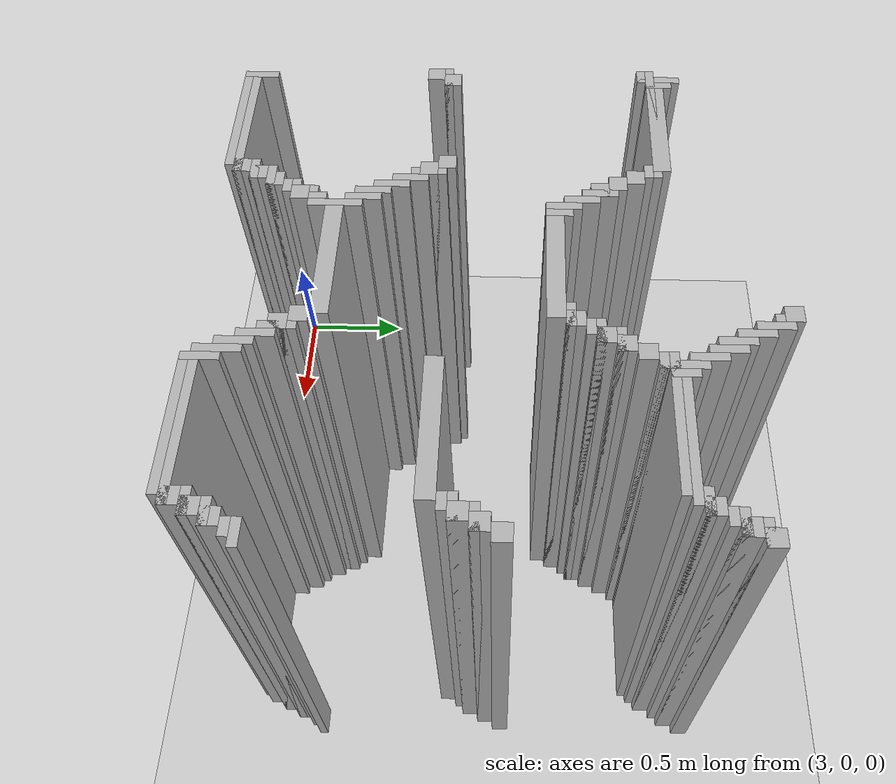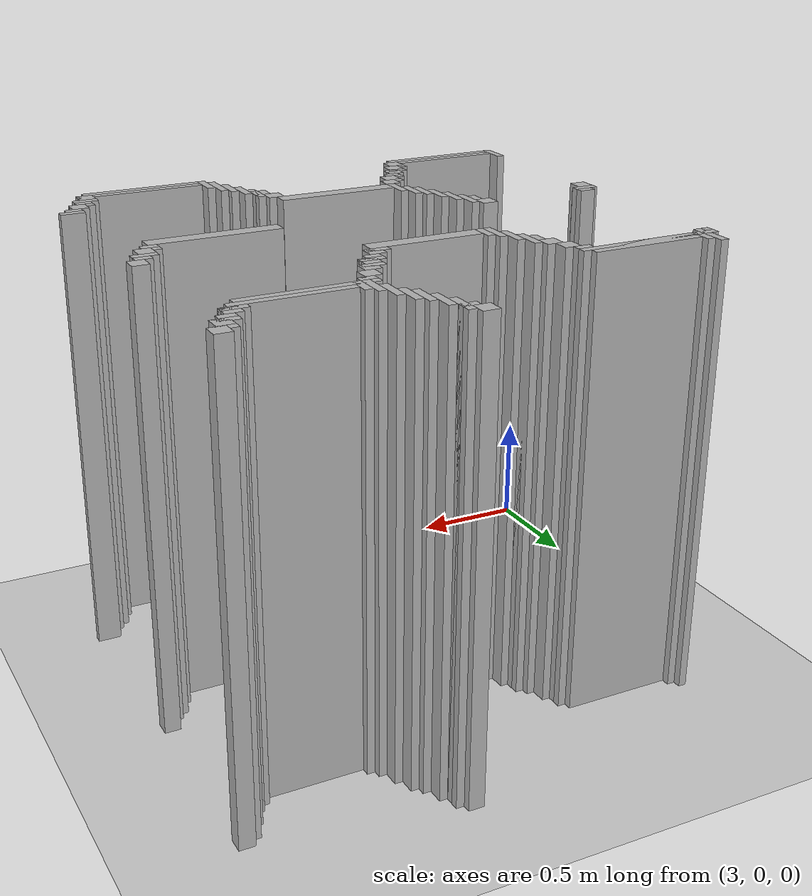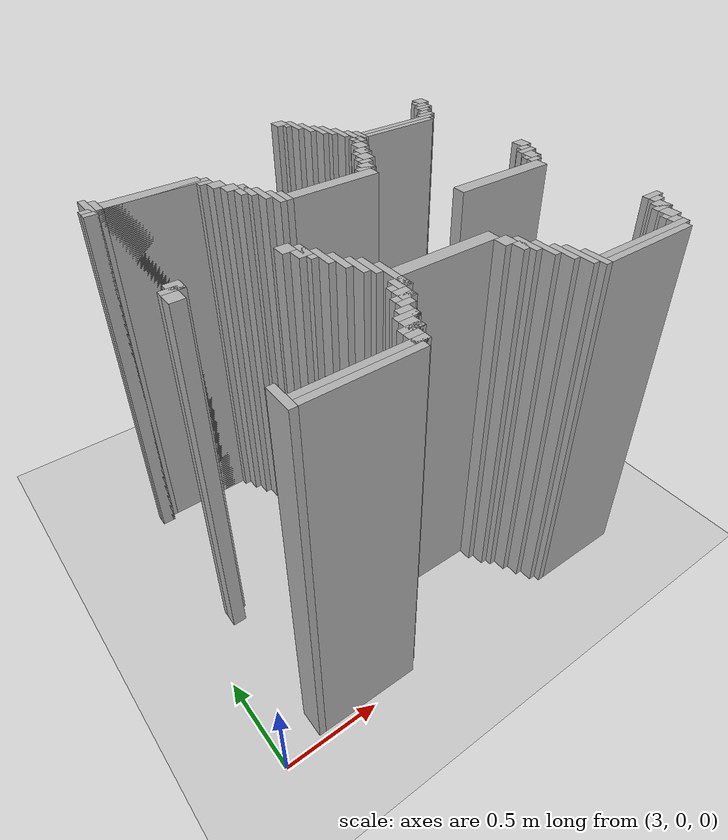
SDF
<sdf version="1.6">
 <world name="slam_world">
  <model name="ground_plane">
   <static>true</static>
   <link name="link">
    <collision name="collision">
     <geometry><plane><normal>0 0 1</normal><size>100 100</size></plane></geometry>
    </collision>
    <visual name="visual">
     <geometry><plane><normal>0 0 1</normal><size>100 100</size></plane></geometry>
     <material>
      <ambient>0.8 0.8 0.8 1</ambient>
      <diffuse>0.8 0.8 0.8 1</diffuse>
      <specular>0.8 0.8 0.8 1</specular>
     </material>
    </visual>
   </link>
  </model>
  <model name="wall_5048">
   <static>true</static>
   <pose>4.454756380510441 2.1577726218097446 1.0 0 0 0</pose>
   <link name="link">
    <collision name="collision">
     <geometry><box><size>0.06960556844547564 0.06960556844547564 2.0</size></box></geometry>
    </collision>
    <visual name="visual">
     <geometry><box><size>0.06960556844547564 0.06960556844547564 2.0</size></box></geometry>
     <material><ambient>0.5 0.5 0.5 1</ambient><diffuse>0.7 0.7 0.7 1</diffuse></material>
    </visual>
   </link>
  </model>
  <model name="wall_5060">
   <static>true</static>
   <pose>4.506960556844548 2.088167053364269 1.0 0 0 0</pose>
   <link name="link">
    <collision name="collision">
     <geometry><box><size>0.03480278422273782 0.13921113689095127 2.0</size></box></geometry>
    </collision>
    <visual name="visual">
     <geometry><box><size>0.03480278422273782 0.13921113689095127 2.0</size></box></geometry>
     <material><ambient>0.5 0.5 0.5 1</ambient><diffuse>0.7 0.7 0.7 1</diffuse></material>
    </visual>
   </link>
  </model>
  <model name="wall_5077">
   <static>true</static>
   <pose>4.489559164733178 2.105568445475638 1.0 0 0 0</pose>
   <link name="link">
    <collision name="collision">
     <geometry><box><size>0.06960556844547564 0.03480278422273782 2.0</size></box></geometry>
    </collision>
    <visual name="visual">
     <geometry><box><size>0.06960556844547564 0.03480278422273782 2.0</size></box></geometry>
     <material><ambient>0.5 0.5 0.5 1</ambient><diffuse>0.7 0.7 0.7 1</diffuse></material>
    </visual>
   </link>
  </model>
  <model name="wall_5091">
   <static>true</static>
   <pose>4.541763341067285 2.0185614849187936 1.0 0 0 0</pose>
   <link name="link">
    <collision name="collision">
     <geometry><box><size>0.03480278422273782 0.13921113689095127 2.0</size></box></geometry>
    </collision>
    <visual name="visual">
     <geometry><box><size>0.03480278422273782 0.13921113689095127 2.0</size></box></geometry>
     <material><ambient>0.5 0.5 0.5 1</ambient><diffuse>0.7 0.7 0.7 1</diffuse></material>
    </visual>
   </link>
  </model>
  <model name="wall_5105">
   <static>true</static>
   <pose>4.576566125290023 1.948955916473318 1.0 0 0 0</pose>
   <link name="link">
    <collision name="collision">
     <geometry><box><size>0.03480278422273782 0.13921113689095127 2.0</size></box></geometry>
    </collision>
    <visual name="visual">
     <geometry><box><size>0.03480278422273782 0.13921113689095127 2.0</size></box></geometry>
     <material><ambient>0.5 0.5 0.5 1</ambient><diffuse>0.7 0.7 0.7 1</diffuse></material>
    </visual>
   </link>
  </model>
  <model name="wall_5106">
   <static>true</static>
   <pose>5.324825986078886 1.9837587006960555 1.0 0 0 0</pose>
   <link name="link">
    <collision name="collision">
     <geometry><box><size>0.06960556844547564 0.06960556844547564 2.0</size></box></geometry>
    </collision>
    <visual name="visual">
     <geometry><box><size>0.06960556844547564 0.06960556844547564 2.0</size></box></geometry>
     <material><ambient>0.5 0.5 0.5 1</ambient><diffuse>0.7 0.7 0.7 1</diffuse></material>
    </visual>
   </link>
  </model>
  <model name="wall_5119">
   <static>true</static>
   <pose>4.611368909512761 1.91415313225058 1.0 0 0 0</pose>
   <link name="link">
    <collision name="collision">
     <geometry><box><size>0.03480278422273782 0.13921113689095127 2.0</size></box></geometry>
    </collision>
    <visual name="visual">
     <geometry><box><size>0.03480278422273782 0.13921113689095127 2.0</size></box></geometry>
     <material><ambient>0.5 0.5 0.5 1</ambient><diffuse>0.7 0.7 0.7 1</diffuse></material>
    </visual>
   </link>
  </model>
  <model name="wall_5120">
   <static>true</static>
   <pose>5.307424593967517 1.9663573085846866 1.0 0 0 0</pose>
   <link name="link">
    <collision name="collision">
     <geometry><box><size>0.10440835266821345 0.03480278422273782 2.0</size></box></geometry>
    </collision>
    <visual name="visual">
     <geometry><box><size>0.10440835266821345 0.03480278422273782 2.0</size></box></geometry>
     <material><ambient>0.5 0.5 0.5 1</ambient><diffuse>0.7 0.7 0.7 1</diffuse></material>
    </visual>
   </link>
  </model>
  <model name="wall_5131">
   <static>true</static>
   <pose>5.290023201856148 1.91415313225058 1.0 0 0 0</pose>
   <link name="link">
    <collision name="collision">
     <geometry><box><size>0.06960556844547564 0.06960556844547564 2.0</size></box></geometry>
    </collision>
    <visual name="visual">
     <geometry><box><size>0.06960556844547564 0.06960556844547564 2.0</size></box></geometry>
     <material><ambient>0.5 0.5 0.5 1</ambient><diffuse>0.7 0.7 0.7 1</diffuse></material>
    </visual>
   </link>
  </model>
  <model name="wall_5141">
   <static>true</static>
   <pose>4.646171693735498 1.8445475638051043 1.0 0 0 0</pose>
   <link name="link">
    <collision name="collision">
     <geometry><box><size>0.03480278422273782 0.13921113689095127 2.0</size></box></geometry>
    </collision>
    <visual name="visual">
     <geometry><box><size>0.03480278422273782 0.13921113689095127 2.0</size></box></geometry>
     <material><ambient>0.5 0.5 0.5 1</ambient><diffuse>0.7 0.7 0.7 1</diffuse></material>
    </visual>
   </link>
  </model>
  <model name="wall_5142">
   <static>true</static>
   <pose>5.27262180974478 1.896751740139211 1.0 0 0 0</pose>
   <link name="link">
    <collision name="collision">
     <geometry><box><size>0.10440835266821345 0.03480278422273782 2.0</size></box></geometry>
    </collision>
    <visual name="visual">
     <geometry><box><size>0.10440835266821345 0.03480278422273782 2.0</size></box></geometry>
     <material><ambient>0.5 0.5 0.5 1</ambient><diffuse>0.7 0.7 0.7 1</diffuse></material>
    </visual>
   </link>
  </model>
  <model name="wall_5153">
   <static>true</static>
   <pose>5.25522041763341 1.8619489559164732 1.0 0 0 0</pose>
   <link name="link">
    <collision name="collision">
     <geometry><box><size>0.06960556844547564 0.03480278422273782 2.0</size></box></geometry>
    </collision>
    <visual name="visual">
     <geometry><box><size>0.06960556844547564 0.03480278422273782 2.0</size></box></geometry>
     <material><ambient>0.5 0.5 0.5 1</ambient><diffuse>0.7 0.7 0.7 1</diffuse></material>
    </visual>
   </link>
  </model>
  <model name="wall_5159">
   <static>true</static>
   <pose>3.219257540603248 1.75754060324826 1.0 0 0 0</pose>
   <link name="link">
    <collision name="collision">
     <geometry><box><size>0.03480278422273782 0.17401392111368907 2.0</size></box></geometry>
    </collision>
    <visual name="visual">
     <geometry><box><size>0.03480278422273782 0.17401392111368907 2.0</size></box></geometry>
     <material><ambient>0.5 0.5 0.5 1</ambient><diffuse>0.7 0.7 0.7 1</diffuse></material>
    </visual>
   </link>
  </model>
  <model name="wall_5160">
   <static>true</static>
   <pose>4.6809744779582365 1.75754060324826 1.0 0 0 0</pose>
   <link name="link">
    <collision name="collision">
     <geometry><box><size>0.03480278422273782 0.17401392111368907 2.0</size></box></geometry>
    </collision>
    <visual name="visual">
     <geometry><box><size>0.03480278422273782 0.17401392111368907 2.0</size></box></geometry>
     <material><ambient>0.5 0.5 0.5 1</ambient><diffuse>0.7 0.7 0.7 1</diffuse></material>
    </visual>
   </link>
  </model>
  <model name="wall_5161">
   <static>true</static>
   <pose>5.220417633410673 1.8097447795823665 1.0 0 0 0</pose>
   <link name="link">
    <collision name="collision">
     <geometry><box><size>0.06960556844547564 0.06960556844547564 2.0</size></box></geometry>
    </collision>
    <visual name="visual">
     <geometry><box><size>0.06960556844547564 0.06960556844547564 2.0</size></box></geometry>
     <material><ambient>0.5 0.5 0.5 1</ambient><diffuse>0.7 0.7 0.7 1</diffuse></material>
    </visual>
   </link>
  </model>
  <model name="wall_5173">
   <static>true</static>
   <pose>3.254060324825986 1.75754060324826 1.0 0 0 0</pose>
   <link name="link">
    <collision name="collision">
     <geometry><box><size>0.03480278422273782 0.10440835266821345 2.0</size></box></geometry>
    </collision>
    <visual name="visual">
     <geometry><box><size>0.03480278422273782 0.10440835266821345 2.0</size></box></geometry>
     <material><ambient>0.5 0.5 0.5 1</ambient><diffuse>0.7 0.7 0.7 1</diffuse></material>
    </visual>
   </link>
  </model>
  <model name="wall_5174">
   <static>true</static>
   <pose>4.715777262180974 1.75754060324826 1.0 0 0 0</pose>
   <link name="link">
    <collision name="collision">
     <geometry><box><size>0.03480278422273782 0.10440835266821345 2.0</size></box></geometry>
    </collision>
    <visual name="visual">
     <geometry><box><size>0.03480278422273782 0.10440835266821345 2.0</size></box></geometry>
     <material><ambient>0.5 0.5 0.5 1</ambient><diffuse>0.7 0.7 0.7 1</diffuse></material>
    </visual>
   </link>
  </model>
  <model name="wall_5175">
   <static>true</static>
   <pose>5.203016241299304 1.7923433874709975 1.0 0 0 0</pose>
   <link name="link">
    <collision name="collision">
     <geometry><box><size>0.10440835266821345 0.03480278422273782 2.0</size></box></geometry>
    </collision>
    <visual name="visual">
     <geometry><box><size>0.10440835266821345 0.03480278422273782 2.0</size></box></geometry>
     <material><ambient>0.5 0.5 0.5 1</ambient><diffuse>0.7 0.7 0.7 1</diffuse></material>
    </visual>
   </link>
  </model>
  <model name="wall_5186">
   <static>true</static>
   <pose>3.51508120649652 1.740139211136891 1.0 0 0 0</pose>
   <link name="link">
    <collision name="collision">
     <geometry><box><size>0.4872389791183295 0.06960556844547564 2.0</size></box></geometry>
    </collision>
    <visual name="visual">
     <geometry><box><size>0.4872389791183295 0.06960556844547564 2.0</size></box></geometry>
     <material><ambient>0.5 0.5 0.5 1</ambient><diffuse>0.7 0.7 0.7 1</diffuse></material>
    </visual>
   </link>
  </model>
  <model name="wall_5187">
   <static>true</static>
   <pose>4.976798143851508 1.75754060324826 1.0 0 0 0</pose>
   <link name="link">
    <collision name="collision">
     <geometry><box><size>0.4872389791183295 0.03480278422273782 2.0</size></box></geometry>
    </collision>
    <visual name="visual">
     <geometry><box><size>0.4872389791183295 0.03480278422273782 2.0</size></box></geometry>
     <material><ambient>0.5 0.5 0.5 1</ambient><diffuse>0.7 0.7 0.7 1</diffuse></material>
    </visual>
   </link>
  </model>
  <model name="wall_5196">
   <static>true</static>
   <pose>3.480278422273782 1.722737819025522 1.0 0 0 0</pose>
   <link name="link">
    <collision name="collision">
     <geometry><box><size>0.6264501160092807 0.03480278422273782 2.0</size></box></geometry>
    </collision>
    <visual name="visual">
     <geometry><box><size>0.6264501160092807 0.03480278422273782 2.0</size></box></geometry>
     <material><ambient>0.5 0.5 0.5 1</ambient><diffuse>0.7 0.7 0.7 1</diffuse></material>
    </visual>
   </link>
  </model>
  <model name="wall_5197">
   <static>true</static>
   <pose>4.907192575406032 1.722737819025522 1.0 0 0 0</pose>
   <link name="link">
    <collision name="collision">
     <geometry><box><size>0.5568445475638051 0.03480278422273782 2.0</size></box></geometry>
    </collision>
    <visual name="visual">
     <geometry><box><size>0.5568445475638051 0.03480278422273782 2.0</size></box></geometry>
     <material><ambient>0.5 0.5 0.5 1</ambient><diffuse>0.7 0.7 0.7 1</diffuse></material>
    </visual>
   </link>
  </model>
  <model name="wall_5210">
   <static>true</static>
   <pose>3.201856148491879 1.6879350348027842 1.0 0 0 0</pose>
   <link name="link">
    <collision name="collision">
     <geometry><box><size>0.06960556844547564 0.03480278422273782 2.0</size></box></geometry>
    </collision>
    <visual name="visual">
     <geometry><box><size>0.06960556844547564 0.03480278422273782 2.0</size></box></geometry>
     <material><ambient>0.5 0.5 0.5 1</ambient><diffuse>0.7 0.7 0.7 1</diffuse></material>
    </visual>
   </link>
  </model>
  <model name="wall_5211">
   <static>true</static>
   <pose>3.7587006960556844 1.6879350348027842 1.0 0 0 0</pose>
   <link name="link">
    <collision name="collision">
     <geometry><box><size>0.06960556844547564 0.03480278422273782 2.0</size></box></geometry>
    </collision>
    <visual name="visual">
     <geometry><box><size>0.06960556844547564 0.03480278422273782 2.0</size></box></geometry>
     <material><ambient>0.5 0.5 0.5 1</ambient><diffuse>0.7 0.7 0.7 1</diffuse></material>
    </visual>
   </link>
  </model>
  <model name="wall_5212">
   <static>true</static>
   <pose>4.663573085846868 1.6879350348027842 1.0 0 0 0</pose>
   <link name="link">
    <collision name="collision">
     <geometry><box><size>0.06960556844547564 0.03480278422273782 2.0</size></box></geometry>
    </collision>
    <visual name="visual">
     <geometry><box><size>0.06960556844547564 0.03480278422273782 2.0</size></box></geometry>
     <material><ambient>0.5 0.5 0.5 1</ambient><diffuse>0.7 0.7 0.7 1</diffuse></material>
    </visual>
   </link>
  </model>
  <model name="wall_5226">
   <static>true</static>
   <pose>3.793503480278422 1.6357308584686774 1.0 0 0 0</pose>
   <link name="link">
    <collision name="collision">
     <geometry><box><size>0.06960556844547564 0.06960556844547564 2.0</size></box></geometry>
    </collision>
    <visual name="visual">
     <geometry><box><size>0.06960556844547564 0.06960556844547564 2.0</size></box></geometry>
     <material><ambient>0.5 0.5 0.5 1</ambient><diffuse>0.7 0.7 0.7 1</diffuse></material>
    </visual>
   </link>
  </model>
  <model name="wall_5227">
   <static>true</static>
   <pose>4.6287703016241295 1.6357308584686774 1.0 0 0 0</pose>
   <link name="link">
    <collision name="collision">
     <geometry><box><size>0.06960556844547564 0.06960556844547564 2.0</size></box></geometry>
    </collision>
    <visual name="visual">
     <geometry><box><size>0.06960556844547564 0.06960556844547564 2.0</size></box></geometry>
     <material><ambient>0.5 0.5 0.5 1</ambient><diffuse>0.7 0.7 0.7 1</diffuse></material>
    </visual>
   </link>
  </model>
  <model name="wall_5241">
   <static>true</static>
   <pose>3.82830626450116 1.5661252900232019 1.0 0 0 0</pose>
   <link name="link">
    <collision name="collision">
     <geometry><box><size>0.06960556844547564 0.06960556844547564 2.0</size></box></geometry>
    </collision>
    <visual name="visual">
     <geometry><box><size>0.06960556844547564 0.06960556844547564 2.0</size></box></geometry>
     <material><ambient>0.5 0.5 0.5 1</ambient><diffuse>0.7 0.7 0.7 1</diffuse></material>
    </visual>
   </link>
  </model>
  <model name="wall_5242">
   <static>true</static>
   <pose>4.593967517401392 1.5661252900232019 1.0 0 0 0</pose>
   <link name="link">
    <collision name="collision">
     <geometry><box><size>0.06960556844547564 0.06960556844547564 2.0</size></box></geometry>
    </collision>
    <visual name="visual">
     <geometry><box><size>0.06960556844547564 0.06960556844547564 2.0</size></box></geometry>
     <material><ambient>0.5 0.5 0.5 1</ambient><diffuse>0.7 0.7 0.7 1</diffuse></material>
    </visual>
   </link>
  </model>
  <model name="wall_5256">
   <static>true</static>
   <pose>3.8805104408352666 1.4965197215777262 1.0 0 0 0</pose>
   <link name="link">
    <collision name="collision">
     <geometry><box><size>0.03480278422273782 0.13921113689095127 2.0</size></box></geometry>
    </collision>
    <visual name="visual">
     <geometry><box><size>0.03480278422273782 0.13921113689095127 2.0</size></box></geometry>
     <material><ambient>0.5 0.5 0.5 1</ambient><diffuse>0.7 0.7 0.7 1</diffuse></material>
    </visual>
   </link>
  </model>
  <model name="wall_5257">
   <static>true</static>
   <pose>4.576566125290023 1.548723897911833 1.0 0 0 0</pose>
   <link name="link">
    <collision name="collision">
     <geometry><box><size>0.10440835266821345 0.03480278422273782 2.0</size></box></geometry>
    </collision>
    <visual name="visual">
     <geometry><box><size>0.10440835266821345 0.03480278422273782 2.0</size></box></geometry>
     <material><ambient>0.5 0.5 0.5 1</ambient><diffuse>0.7 0.7 0.7 1</diffuse></material>
    </visual>
   </link>
  </model>
  <model name="wall_5271">
   <static>true</static>
   <pose>3.863109048723898 1.4965197215777262 1.0 0 0 0</pose>
   <link name="link">
    <collision name="collision">
     <geometry><box><size>0.06960556844547564 0.06960556844547564 2.0</size></box></geometry>
    </collision>
    <visual name="visual">
     <geometry><box><size>0.06960556844547564 0.06960556844547564 2.0</size></box></geometry>
     <material><ambient>0.5 0.5 0.5 1</ambient><diffuse>0.7 0.7 0.7 1</diffuse></material>
    </visual>
   </link>
  </model>
  <model name="wall_5272">
   <static>true</static>
   <pose>4.559164733178654 1.4965197215777262 1.0 0 0 0</pose>
   <link name="link">
    <collision name="collision">
     <geometry><box><size>0.06960556844547564 0.06960556844547564 2.0</size></box></geometry>
    </collision>
    <visual name="visual">
     <geometry><box><size>0.06960556844547564 0.06960556844547564 2.0</size></box></geometry>
     <material><ambient>0.5 0.5 0.5 1</ambient><diffuse>0.7 0.7 0.7 1</diffuse></material>
    </visual>
   </link>
  </model>
  <model name="wall_5282">
   <static>true</static>
   <pose>3.9153132250580045 1.4269141531322505 1.0 0 0 0</pose>
   <link name="link">
    <collision name="collision">
     <geometry><box><size>0.03480278422273782 0.13921113689095127 2.0</size></box></geometry>
    </collision>
    <visual name="visual">
     <geometry><box><size>0.03480278422273782 0.13921113689095127 2.0</size></box></geometry>
     <material><ambient>0.5 0.5 0.5 1</ambient><diffuse>0.7 0.7 0.7 1</diffuse></material>
    </visual>
   </link>
  </model>
  <model name="wall_5283">
   <static>true</static>
   <pose>4.541763341067285 1.4791183294663572 1.0 0 0 0</pose>
   <link name="link">
    <collision name="collision">
     <geometry><box><size>0.10440835266821345 0.03480278422273782 2.0</size></box></geometry>
    </collision>
    <visual name="visual">
     <geometry><box><size>0.10440835266821345 0.03480278422273782 2.0</size></box></geometry>
     <material><ambient>0.5 0.5 0.5 1</ambient><diffuse>0.7 0.7 0.7 1</diffuse></material>
    </visual>
   </link>
  </model>
  <model name="wall_5295">
   <static>true</static>
   <pose>4.524361948955916 1.4443155452436194 1.0 0 0 0</pose>
   <link name="link">
    <collision name="collision">
     <geometry><box><size>0.06960556844547564 0.03480278422273782 2.0</size></box></geometry>
    </collision>
    <visual name="visual">
     <geometry><box><size>0.06960556844547564 0.03480278422273782 2.0</size></box></geometry>
     <material><ambient>0.5 0.5 0.5 1</ambient><diffuse>0.7 0.7 0.7 1</diffuse></material>
    </visual>
   </link>
  </model>
  <model name="wall_5304">
   <static>true</static>
   <pose>3.9501160092807424 1.357308584686775 1.0 0 0 0</pose>
   <link name="link">
    <collision name="collision">
     <geometry><box><size>0.03480278422273782 0.13921113689095127 2.0</size></box></geometry>
    </collision>
    <visual name="visual">
     <geometry><box><size>0.03480278422273782 0.13921113689095127 2.0</size></box></geometry>
     <material><ambient>0.5 0.5 0.5 1</ambient><diffuse>0.7 0.7 0.7 1</diffuse></material>
    </visual>
   </link>
  </model>
  <model name="wall_5305">
   <static>true</static>
   <pose>4.489559164733178 1.3921113689095126 1.0 0 0 0</pose>
   <link name="link">
    <collision name="collision">
     <geometry><box><size>0.06960556844547564 0.06960556844547564 2.0</size></box></geometry>
    </collision>
    <visual name="visual">
     <geometry><box><size>0.06960556844547564 0.06960556844547564 2.0</size></box></geometry>
     <material><ambient>0.5 0.5 0.5 1</ambient><diffuse>0.7 0.7 0.7 1</diffuse></material>
    </visual>
   </link>
  </model>
  <model name="wall_5314">
   <static>true</static>
   <pose>3.98491879350348 1.339907192575406 1.0 0 0 0</pose>
   <link name="link">
    <collision name="collision">
     <geometry><box><size>0.03480278422273782 0.10440835266821345 2.0</size></box></geometry>
    </collision>
    <visual name="visual">
     <geometry><box><size>0.03480278422273782 0.10440835266821345 2.0</size></box></geometry>
     <material><ambient>0.5 0.5 0.5 1</ambient><diffuse>0.7 0.7 0.7 1</diffuse></material>
    </visual>
   </link>
  </model>
  <model name="wall_5315">
   <static>true</static>
   <pose>4.472157772621809 1.3747099767981439 1.0 0 0 0</pose>
   <link name="link">
    <collision name="collision">
     <geometry><box><size>0.10440835266821345 0.03480278422273782 2.0</size></box></geometry>
    </collision>
    <visual name="visual">
     <geometry><box><size>0.10440835266821345 0.03480278422273782 2.0</size></box></geometry>
     <material><ambient>0.5 0.5 0.5 1</ambient><diffuse>0.7 0.7 0.7 1</diffuse></material>
    </visual>
   </link>
  </model>
  <model name="wall_5329">
   <static>true</static>
   <pose>4.2459396751740135 1.322505800464037 1.0 0 0 0</pose>
   <link name="link">
    <collision name="collision">
     <geometry><box><size>0.4872389791183295 0.06960556844547564 2.0</size></box></geometry>
    </collision>
    <visual name="visual">
     <geometry><box><size>0.4872389791183295 0.06960556844547564 2.0</size></box></geometry>
     <material><ambient>0.5 0.5 0.5 1</ambient><diffuse>0.7 0.7 0.7 1</diffuse></material>
    </visual>
   </link>
  </model>
  <model name="wall_5376">
   <static>true</static>
   <pose>5.324825986078886 1.148491879350348 1.0 0 0 0</pose>
   <link name="link">
    <collision name="collision">
     <geometry><box><size>0.06960556844547564 0.06960556844547564 2.0</size></box></geometry>
    </collision>
    <visual name="visual">
     <geometry><box><size>0.06960556844547564 0.06960556844547564 2.0</size></box></geometry>
     <material><ambient>0.5 0.5 0.5 1</ambient><diffuse>0.7 0.7 0.7 1</diffuse></material>
    </visual>
   </link>
  </model>
  <model name="wall_5387">
   <static>true</static>
   <pose>5.290023201856148 1.0788863109048723 1.0 0 0 0</pose>
   <link name="link">
    <collision name="collision">
     <geometry><box><size>0.06960556844547564 0.06960556844547564 2.0</size></box></geometry>
    </collision>
    <visual name="visual">
     <geometry><box><size>0.06960556844547564 0.06960556844547564 2.0</size></box></geometry>
     <material><ambient>0.5 0.5 0.5 1</ambient><diffuse>0.7 0.7 0.7 1</diffuse></material>
    </visual>
   </link>
  </model>
  <model name="wall_5398">
   <static>true</static>
   <pose>5.27262180974478 1.0614849187935034 1.0 0 0 0</pose>
   <link name="link">
    <collision name="collision">
     <geometry><box><size>0.10440835266821345 0.03480278422273782 2.0</size></box></geometry>
    </collision>
    <visual name="visual">
     <geometry><box><size>0.10440835266821345 0.03480278422273782 2.0</size></box></geometry>
     <material><ambient>0.5 0.5 0.5 1</ambient><diffuse>0.7 0.7 0.7 1</diffuse></material>
    </visual>
   </link>
  </model>
  <model name="wall_5408">
   <static>true</static>
   <pose>5.25522041763341 1.0092807424593968 1.0 0 0 0</pose>
   <link name="link">
    <collision name="collision">
     <geometry><box><size>0.06960556844547564 0.06960556844547564 2.0</size></box></geometry>
    </collision>
    <visual name="visual">
     <geometry><box><size>0.06960556844547564 0.06960556844547564 2.0</size></box></geometry>
     <material><ambient>0.5 0.5 0.5 1</ambient><diffuse>0.7 0.7 0.7 1</diffuse></material>
    </visual>
   </link>
  </model>
  <model name="wall_5414">
   <static>true</static>
   <pose>5.237819025522041 0.9918793503480278 1.0 0 0 0</pose>
   <link name="link">
    <collision name="collision">
     <geometry><box><size>0.10440835266821345 0.03480278422273782 2.0</size></box></geometry>
    </collision>
    <visual name="visual">
     <geometry><box><size>0.10440835266821345 0.03480278422273782 2.0</size></box></geometry>
     <material><ambient>0.5 0.5 0.5 1</ambient><diffuse>0.7 0.7 0.7 1</diffuse></material>
    </visual>
   </link>
  </model>
  <model name="wall_5424">
   <static>true</static>
   <pose>5.220417633410673 0.95707656612529 1.0 0 0 0</pose>
   <link name="link">
    <collision name="collision">
     <geometry><box><size>0.06960556844547564 0.03480278422273782 2.0</size></box></geometry>
    </collision>
    <visual name="visual">
     <geometry><box><size>0.06960556844547564 0.03480278422273782 2.0</size></box></geometry>
     <material><ambient>0.5 0.5 0.5 1</ambient><diffuse>0.7 0.7 0.7 1</diffuse></material>
    </visual>
   </link>
  </model>
  <model name="wall_5432">
   <static>true</static>
   <pose>3.236658932714617 0.9048723897911832 1.0 0 0 0</pose>
   <link name="link">
    <collision name="collision">
     <geometry><box><size>0.06960556844547564 0.06960556844547564 2.0</size></box></geometry>
    </collision>
    <visual name="visual">
     <geometry><box><size>0.06960556844547564 0.06960556844547564 2.0</size></box></geometry>
     <material><ambient>0.5 0.5 0.5 1</ambient><diffuse>0.7 0.7 0.7 1</diffuse></material>
    </visual>
   </link>
  </model>
  <model name="wall_5433">
   <static>true</static>
   <pose>3.7238979118329465 0.9048723897911832 1.0 0 0 0</pose>
   <link name="link">
    <collision name="collision">
     <geometry><box><size>0.06960556844547564 0.06960556844547564 2.0</size></box></geometry>
    </collision>
    <visual name="visual">
     <geometry><box><size>0.06960556844547564 0.06960556844547564 2.0</size></box></geometry>
     <material><ambient>0.5 0.5 0.5 1</ambient><diffuse>0.7 0.7 0.7 1</diffuse></material>
    </visual>
   </link>
  </model>
  <model name="wall_5434">
   <static>true</static>
   <pose>4.94199535962877 0.9048723897911832 1.0 0 0 0</pose>
   <link name="link">
    <collision name="collision">
     <geometry><box><size>0.5568445475638051 0.06960556844547564 2.0</size></box></geometry>
    </collision>
    <visual name="visual">
     <geometry><box><size>0.5568445475638051 0.06960556844547564 2.0</size></box></geometry>
     <material><ambient>0.5 0.5 0.5 1</ambient><diffuse>0.7 0.7 0.7 1</diffuse></material>
    </visual>
   </link>
  </model>
  <model name="wall_5447">
   <static>true</static>
   <pose>3.219257540603248 0.8874709976798143 1.0 0 0 0</pose>
   <link name="link">
    <collision name="collision">
     <geometry><box><size>0.10440835266821345 0.03480278422273782 2.0</size></box></geometry>
    </collision>
    <visual name="visual">
     <geometry><box><size>0.10440835266821345 0.03480278422273782 2.0</size></box></geometry>
     <material><ambient>0.5 0.5 0.5 1</ambient><diffuse>0.7 0.7 0.7 1</diffuse></material>
    </visual>
   </link>
  </model>
  <model name="wall_5448">
   <static>true</static>
   <pose>3.776102088167053 0.8352668213457076 1.0 0 0 0</pose>
   <link name="link">
    <collision name="collision">
     <geometry><box><size>0.03480278422273782 0.13921113689095127 2.0</size></box></geometry>
    </collision>
    <visual name="visual">
     <geometry><box><size>0.03480278422273782 0.13921113689095127 2.0</size></box></geometry>
     <material><ambient>0.5 0.5 0.5 1</ambient><diffuse>0.7 0.7 0.7 1</diffuse></material>
    </visual>
   </link>
  </model>
  <model name="wall_5457">
   <static>true</static>
   <pose>3.201856148491879 0.8352668213457076 1.0 0 0 0</pose>
   <link name="link">
    <collision name="collision">
     <geometry><box><size>0.06960556844547564 0.06960556844547564 2.0</size></box></geometry>
    </collision>
    <visual name="visual">
     <geometry><box><size>0.06960556844547564 0.06960556844547564 2.0</size></box></geometry>
     <material><ambient>0.5 0.5 0.5 1</ambient><diffuse>0.7 0.7 0.7 1</diffuse></material>
    </visual>
   </link>
  </model>
  <model name="wall_5458">
   <static>true</static>
   <pose>3.7587006960556844 0.8352668213457076 1.0 0 0 0</pose>
   <link name="link">
    <collision name="collision">
     <geometry><box><size>0.06960556844547564 0.06960556844547564 2.0</size></box></geometry>
    </collision>
    <visual name="visual">
     <geometry><box><size>0.06960556844547564 0.06960556844547564 2.0</size></box></geometry>
     <material><ambient>0.5 0.5 0.5 1</ambient><diffuse>0.7 0.7 0.7 1</diffuse></material>
    </visual>
   </link>
  </model>
  <model name="wall_5468">
   <static>true</static>
   <pose>3.810904872389791 0.765661252900232 1.0 0 0 0</pose>
   <link name="link">
    <collision name="collision">
     <geometry><box><size>0.03480278422273782 0.13921113689095127 2.0</size></box></geometry>
    </collision>
    <visual name="visual">
     <geometry><box><size>0.03480278422273782 0.13921113689095127 2.0</size></box></geometry>
     <material><ambient>0.5 0.5 0.5 1</ambient><diffuse>0.7 0.7 0.7 1</diffuse></material>
    </visual>
   </link>
  </model>
  <model name="wall_5484">
   <static>true</static>
   <pose>3.845707656612529 0.6960556844547563 1.0 0 0 0</pose>
   <link name="link">
    <collision name="collision">
     <geometry><box><size>0.03480278422273782 0.13921113689095127 2.0</size></box></geometry>
    </collision>
    <visual name="visual">
     <geometry><box><size>0.03480278422273782 0.13921113689095127 2.0</size></box></geometry>
     <material><ambient>0.5 0.5 0.5 1</ambient><diffuse>0.7 0.7 0.7 1</diffuse></material>
    </visual>
   </link>
  </model>
  <model name="wall_5494">
   <static>true</static>
   <pose>3.8805104408352666 0.6264501160092807 1.0 0 0 0</pose>
   <link name="link">
    <collision name="collision">
     <geometry><box><size>0.03480278422273782 0.13921113689095127 2.0</size></box></geometry>
    </collision>
    <visual name="visual">
     <geometry><box><size>0.03480278422273782 0.13921113689095127 2.0</size></box></geometry>
     <material><ambient>0.5 0.5 0.5 1</ambient><diffuse>0.7 0.7 0.7 1</diffuse></material>
    </visual>
   </link>
  </model>
  <model name="wall_5504">
   <static>true</static>
   <pose>3.9153132250580045 0.5916473317865429 1.0 0 0 0</pose>
   <link name="link">
    <collision name="collision">
     <geometry><box><size>0.03480278422273782 0.13921113689095127 2.0</size></box></geometry>
    </collision>
    <visual name="visual">
     <geometry><box><size>0.03480278422273782 0.13921113689095127 2.0</size></box></geometry>
     <material><ambient>0.5 0.5 0.5 1</ambient><diffuse>0.7 0.7 0.7 1</diffuse></material>
    </visual>
   </link>
  </model>
  <model name="wall_5520">
   <static>true</static>
   <pose>3.9501160092807424 0.4872389791183295 1.0 0 0 0</pose>
   <link name="link">
    <collision name="collision">
     <geometry><box><size>0.03480278422273782 0.2088167053364269 2.0</size></box></geometry>
    </collision>
    <visual name="visual">
     <geometry><box><size>0.03480278422273782 0.2088167053364269 2.0</size></box></geometry>
     <material><ambient>0.5 0.5 0.5 1</ambient><diffuse>0.7 0.7 0.7 1</diffuse></material>
    </visual>
   </link>
  </model>
  <model name="wall_5535">
   <static>true</static>
   <pose>4.228538283062645 0.4872389791183295 1.0 0 0 0</pose>
   <link name="link">
    <collision name="collision">
     <geometry><box><size>0.5220417633410672 0.06960556844547564 2.0</size></box></geometry>
    </collision>
    <visual name="visual">
     <geometry><box><size>0.5220417633410672 0.06960556844547564 2.0</size></box></geometry>
     <material><ambient>0.5 0.5 0.5 1</ambient><diffuse>0.7 0.7 0.7 1</diffuse></material>
    </visual>
   </link>
  </model>
  <model name="wall_5548">
   <static>true</static>
   <pose>3.932714617169373 0.4176334106728538 1.0 0 0 0</pose>
   <link name="link">
    <collision name="collision">
     <geometry><box><size>0.06960556844547564 0.06960556844547564 2.0</size></box></geometry>
    </collision>
    <visual name="visual">
     <geometry><box><size>0.06960556844547564 0.06960556844547564 2.0</size></box></geometry>
     <material><ambient>0.5 0.5 0.5 1</ambient><diffuse>0.7 0.7 0.7 1</diffuse></material>
    </visual>
   </link>
  </model>
  <model name="wall_5549">
   <static>true</static>
   <pose>4.489559164733178 0.4176334106728538 1.0 0 0 0</pose>
   <link name="link">
    <collision name="collision">
     <geometry><box><size>0.06960556844547564 0.06960556844547564 2.0</size></box></geometry>
    </collision>
    <visual name="visual">
     <geometry><box><size>0.06960556844547564 0.06960556844547564 2.0</size></box></geometry>
     <material><ambient>0.5 0.5 0.5 1</ambient><diffuse>0.7 0.7 0.7 1</diffuse></material>
    </visual>
   </link>
  </model>
  <model name="wall_5568">
   <static>true</static>
   <pose>3.9153132250580045 0.4002320185614849 1.0 0 0 0</pose>
   <link name="link">
    <collision name="collision">
     <geometry><box><size>0.10440835266821345 0.03480278422273782 2.0</size></box></geometry>
    </collision>
    <visual name="visual">
     <geometry><box><size>0.10440835266821345 0.03480278422273782 2.0</size></box></geometry>
     <material><ambient>0.5 0.5 0.5 1</ambient><diffuse>0.7 0.7 0.7 1</diffuse></material>
    </visual>
   </link>
  </model>
  <model name="wall_5569">
   <static>true</static>
   <pose>4.541763341067285 0.34802784222737815 1.0 0 0 0</pose>
   <link name="link">
    <collision name="collision">
     <geometry><box><size>0.03480278422273782 0.13921113689095127 2.0</size></box></geometry>
    </collision>
    <visual name="visual">
     <geometry><box><size>0.03480278422273782 0.13921113689095127 2.0</size></box></geometry>
     <material><ambient>0.5 0.5 0.5 1</ambient><diffuse>0.7 0.7 0.7 1</diffuse></material>
    </visual>
   </link>
  </model>
  <model name="wall_5588">
   <static>true</static>
   <pose>3.897911832946636 0.34802784222737815 1.0 0 0 0</pose>
   <link name="link">
    <collision name="collision">
     <geometry><box><size>0.06960556844547564 0.06960556844547564 2.0</size></box></geometry>
    </collision>
    <visual name="visual">
     <geometry><box><size>0.06960556844547564 0.06960556844547564 2.0</size></box></geometry>
     <material><ambient>0.5 0.5 0.5 1</ambient><diffuse>0.7 0.7 0.7 1</diffuse></material>
    </visual>
   </link>
  </model>
  <model name="wall_5589">
   <static>true</static>
   <pose>4.524361948955916 0.34802784222737815 1.0 0 0 0</pose>
   <link name="link">
    <collision name="collision">
     <geometry><box><size>0.06960556844547564 0.06960556844547564 2.0</size></box></geometry>
    </collision>
    <visual name="visual">
     <geometry><box><size>0.06960556844547564 0.06960556844547564 2.0</size></box></geometry>
     <material><ambient>0.5 0.5 0.5 1</ambient><diffuse>0.7 0.7 0.7 1</diffuse></material>
    </visual>
   </link>
  </model>
  <model name="wall_5608">
   <static>true</static>
   <pose>3.8805104408352666 0.3306264501160093 1.0 0 0 0</pose>
   <link name="link">
    <collision name="collision">
     <geometry><box><size>0.10440835266821345 0.03480278422273782 2.0</size></box></geometry>
    </collision>
    <visual name="visual">
     <geometry><box><size>0.10440835266821345 0.03480278422273782 2.0</size></box></geometry>
     <material><ambient>0.5 0.5 0.5 1</ambient><diffuse>0.7 0.7 0.7 1</diffuse></material>
    </visual>
   </link>
  </model>
  <model name="wall_5609">
   <static>true</static>
   <pose>4.576566125290023 0.27842227378190254 1.0 0 0 0</pose>
   <link name="link">
    <collision name="collision">
     <geometry><box><size>0.03480278422273782 0.13921113689095127 2.0</size></box></geometry>
    </collision>
    <visual name="visual">
     <geometry><box><size>0.03480278422273782 0.13921113689095127 2.0</size></box></geometry>
     <material><ambient>0.5 0.5 0.5 1</ambient><diffuse>0.7 0.7 0.7 1</diffuse></material>
    </visual>
   </link>
  </model>
  <model name="wall_5610">
   <static>true</static>
   <pose>5.342227378190255 0.3306264501160093 1.0 0 0 0</pose>
   <link name="link">
    <collision name="collision">
     <geometry><box><size>0.10440835266821345 0.03480278422273782 2.0</size></box></geometry>
    </collision>
    <visual name="visual">
     <geometry><box><size>0.10440835266821345 0.03480278422273782 2.0</size></box></geometry>
     <material><ambient>0.5 0.5 0.5 1</ambient><diffuse>0.7 0.7 0.7 1</diffuse></material>
    </visual>
   </link>
  </model>
  <model name="wall_5625">
   <static>true</static>
   <pose>3.863109048723898 0.29582366589327147 1.0 0 0 0</pose>
   <link name="link">
    <collision name="collision">
     <geometry><box><size>0.06960556844547564 0.03480278422273782 2.0</size></box></geometry>
    </collision>
    <visual name="visual">
     <geometry><box><size>0.06960556844547564 0.03480278422273782 2.0</size></box></geometry>
     <material><ambient>0.5 0.5 0.5 1</ambient><diffuse>0.7 0.7 0.7 1</diffuse></material>
    </visual>
   </link>
  </model>
  <model name="wall_5626">
   <static>true</static>
   <pose>5.324825986078886 0.29582366589327147 1.0 0 0 0</pose>
   <link name="link">
    <collision name="collision">
     <geometry><box><size>0.06960556844547564 0.03480278422273782 2.0</size></box></geometry>
    </collision>
    <visual name="visual">
     <geometry><box><size>0.06960556844547564 0.03480278422273782 2.0</size></box></geometry>
     <material><ambient>0.5 0.5 0.5 1</ambient><diffuse>0.7 0.7 0.7 1</diffuse></material>
    </visual>
   </link>
  </model>
  <model name="wall_5638">
   <static>true</static>
   <pose>3.82830626450116 0.24361948955916474 1.0 0 0 0</pose>
   <link name="link">
    <collision name="collision">
     <geometry><box><size>0.06960556844547564 0.06960556844547564 2.0</size></box></geometry>
    </collision>
    <visual name="visual">
     <geometry><box><size>0.06960556844547564 0.06960556844547564 2.0</size></box></geometry>
     <material><ambient>0.5 0.5 0.5 1</ambient><diffuse>0.7 0.7 0.7 1</diffuse></material>
    </visual>
   </link>
  </model>
  <model name="wall_5639">
   <static>true</static>
   <pose>4.611368909512761 0.2088167053364269 1.0 0 0 0</pose>
   <link name="link">
    <collision name="collision">
     <geometry><box><size>0.03480278422273782 0.13921113689095127 2.0</size></box></geometry>
    </collision>
    <visual name="visual">
     <geometry><box><size>0.03480278422273782 0.13921113689095127 2.0</size></box></geometry>
     <material><ambient>0.5 0.5 0.5 1</ambient><diffuse>0.7 0.7 0.7 1</diffuse></material>
    </visual>
   </link>
  </model>
  <model name="wall_5640">
   <static>true</static>
   <pose>5.290023201856148 0.24361948955916474 1.0 0 0 0</pose>
   <link name="link">
    <collision name="collision">
     <geometry><box><size>0.06960556844547564 0.06960556844547564 2.0</size></box></geometry>
    </collision>
    <visual name="visual">
     <geometry><box><size>0.06960556844547564 0.06960556844547564 2.0</size></box></geometry>
     <material><ambient>0.5 0.5 0.5 1</ambient><diffuse>0.7 0.7 0.7 1</diffuse></material>
    </visual>
   </link>
  </model>
  <model name="wall_5658">
   <static>true</static>
   <pose>3.810904872389791 0.2262180974477958 1.0 0 0 0</pose>
   <link name="link">
    <collision name="collision">
     <geometry><box><size>0.10440835266821345 0.03480278422273782 2.0</size></box></geometry>
    </collision>
    <visual name="visual">
     <geometry><box><size>0.10440835266821345 0.03480278422273782 2.0</size></box></geometry>
     <material><ambient>0.5 0.5 0.5 1</ambient><diffuse>0.7 0.7 0.7 1</diffuse></material>
    </visual>
   </link>
  </model>
  <model name="wall_5659">
   <static>true</static>
   <pose>4.646171693735498 0.15661252900232017 1.0 0 0 0</pose>
   <link name="link">
    <collision name="collision">
     <geometry><box><size>0.03480278422273782 0.17401392111368907 2.0</size></box></geometry>
    </collision>
    <visual name="visual">
     <geometry><box><size>0.03480278422273782 0.17401392111368907 2.0</size></box></geometry>
     <material><ambient>0.5 0.5 0.5 1</ambient><diffuse>0.7 0.7 0.7 1</diffuse></material>
    </visual>
   </link>
  </model>
  <model name="wall_5660">
   <static>true</static>
   <pose>5.27262180974478 0.2262180974477958 1.0 0 0 0</pose>
   <link name="link">
    <collision name="collision">
     <geometry><box><size>0.10440835266821345 0.03480278422273782 2.0</size></box></geometry>
    </collision>
    <visual name="visual">
     <geometry><box><size>0.10440835266821345 0.03480278422273782 2.0</size></box></geometry>
     <material><ambient>0.5 0.5 0.5 1</ambient><diffuse>0.7 0.7 0.7 1</diffuse></material>
    </visual>
   </link>
  </model>
  <model name="wall_5675">
   <static>true</static>
   <pose>3.793503480278422 0.17401392111368907 1.0 0 0 0</pose>
   <link name="link">
    <collision name="collision">
     <geometry><box><size>0.06960556844547564 0.06960556844547564 2.0</size></box></geometry>
    </collision>
    <visual name="visual">
     <geometry><box><size>0.06960556844547564 0.06960556844547564 2.0</size></box></geometry>
     <material><ambient>0.5 0.5 0.5 1</ambient><diffuse>0.7 0.7 0.7 1</diffuse></material>
    </visual>
   </link>
  </model>
  <model name="wall_5676">
   <static>true</static>
   <pose>5.25522041763341 0.17401392111368907 1.0 0 0 0</pose>
   <link name="link">
    <collision name="collision">
     <geometry><box><size>0.06960556844547564 0.06960556844547564 2.0</size></box></geometry>
    </collision>
    <visual name="visual">
     <geometry><box><size>0.06960556844547564 0.06960556844547564 2.0</size></box></geometry>
     <material><ambient>0.5 0.5 0.5 1</ambient><diffuse>0.7 0.7 0.7 1</diffuse></material>
    </visual>
   </link>
  </model>
  <model name="wall_5687">
   <static>true</static>
   <pose>3.219257540603248 0.10440835266821345 1.0 0 0 0</pose>
   <link name="link">
    <collision name="collision">
     <geometry><box><size>0.03480278422273782 0.13921113689095127 2.0</size></box></geometry>
    </collision>
    <visual name="visual">
     <geometry><box><size>0.03480278422273782 0.13921113689095127 2.0</size></box></geometry>
     <material><ambient>0.5 0.5 0.5 1</ambient><diffuse>0.7 0.7 0.7 1</diffuse></material>
    </visual>
   </link>
  </model>
  <model name="wall_5688">
   <static>true</static>
   <pose>3.776102088167053 0.15661252900232017 1.0 0 0 0</pose>
   <link name="link">
    <collision name="collision">
     <geometry><box><size>0.10440835266821345 0.03480278422273782 2.0</size></box></geometry>
    </collision>
    <visual name="visual">
     <geometry><box><size>0.10440835266821345 0.03480278422273782 2.0</size></box></geometry>
     <material><ambient>0.5 0.5 0.5 1</ambient><diffuse>0.7 0.7 0.7 1</diffuse></material>
    </visual>
   </link>
  </model>
  <model name="wall_5689">
   <static>true</static>
   <pose>4.6809744779582365 0.10440835266821345 1.0 0 0 0</pose>
   <link name="link">
    <collision name="collision">
     <geometry><box><size>0.03480278422273782 0.13921113689095127 2.0</size></box></geometry>
    </collision>
    <visual name="visual">
     <geometry><box><size>0.03480278422273782 0.13921113689095127 2.0</size></box></geometry>
     <material><ambient>0.5 0.5 0.5 1</ambient><diffuse>0.7 0.7 0.7 1</diffuse></material>
    </visual>
   </link>
  </model>
  <model name="wall_5690">
   <static>true</static>
   <pose>5.237819025522041 0.15661252900232017 1.0 0 0 0</pose>
   <link name="link">
    <collision name="collision">
     <geometry><box><size>0.10440835266821345 0.03480278422273782 2.0</size></box></geometry>
    </collision>
    <visual name="visual">
     <geometry><box><size>0.10440835266821345 0.03480278422273782 2.0</size></box></geometry>
     <material><ambient>0.5 0.5 0.5 1</ambient><diffuse>0.7 0.7 0.7 1</diffuse></material>
    </visual>
   </link>
  </model>
  <model name="wall_5705">
   <static>true</static>
   <pose>3.7587006960556844 0.10440835266821345 1.0 0 0 0</pose>
   <link name="link">
    <collision name="collision">
     <geometry><box><size>0.06960556844547564 0.06960556844547564 2.0</size></box></geometry>
    </collision>
    <visual name="visual">
     <geometry><box><size>0.06960556844547564 0.06960556844547564 2.0</size></box></geometry>
     <material><ambient>0.5 0.5 0.5 1</ambient><diffuse>0.7 0.7 0.7 1</diffuse></material>
    </visual>
   </link>
  </model>
  <model name="wall_5706">
   <static>true</static>
   <pose>5.220417633410673 0.10440835266821345 1.0 0 0 0</pose>
   <link name="link">
    <collision name="collision">
     <geometry><box><size>0.06960556844547564 0.06960556844547564 2.0</size></box></geometry>
    </collision>
    <visual name="visual">
     <geometry><box><size>0.06960556844547564 0.06960556844547564 2.0</size></box></geometry>
     <material><ambient>0.5 0.5 0.5 1</ambient><diffuse>0.7 0.7 0.7 1</diffuse></material>
    </visual>
   </link>
  </model>
  <model name="wall_5715">
   <static>true</static>
   <pose>3.51508120649652 0.08700696055684454 1.0 0 0 0</pose>
   <link name="link">
    <collision name="collision">
     <geometry><box><size>0.5568445475638051 0.03480278422273782 2.0</size></box></geometry>
    </collision>
    <visual name="visual">
     <geometry><box><size>0.5568445475638051 0.03480278422273782 2.0</size></box></geometry>
     <material><ambient>0.5 0.5 0.5 1</ambient><diffuse>0.7 0.7 0.7 1</diffuse></material>
    </visual>
   </link>
  </model>
  <model name="wall_5716">
   <static>true</static>
   <pose>4.976798143851508 0.08700696055684454 1.0 0 0 0</pose>
   <link name="link">
    <collision name="collision">
     <geometry><box><size>0.5568445475638051 0.03480278422273782 2.0</size></box></geometry>
    </collision>
    <visual name="visual">
     <geometry><box><size>0.5568445475638051 0.03480278422273782 2.0</size></box></geometry>
     <material><ambient>0.5 0.5 0.5 1</ambient><diffuse>0.7 0.7 0.7 1</diffuse></material>
    </visual>
   </link>
  </model>
  <model name="wall_5726">
   <static>true</static>
   <pose>3.4976798143851506 0.052204176334106726 1.0 0 0 0</pose>
   <link name="link">
    <collision name="collision">
     <geometry><box><size>0.5220417633410672 0.03480278422273782 2.0</size></box></geometry>
    </collision>
    <visual name="visual">
     <geometry><box><size>0.5220417633410672 0.03480278422273782 2.0</size></box></geometry>
     <material><ambient>0.5 0.5 0.5 1</ambient><diffuse>0.7 0.7 0.7 1</diffuse></material>
    </visual>
   </link>
  </model>
  <model name="wall_5727">
   <static>true</static>
   <pose>4.959396751740139 0.052204176334106726 1.0 0 0 0</pose>
   <link name="link">
    <collision name="collision">
     <geometry><box><size>0.5220417633410672 0.03480278422273782 2.0</size></box></geometry>
    </collision>
    <visual name="visual">
     <geometry><box><size>0.5220417633410672 0.03480278422273782 2.0</size></box></geometry>
     <material><ambient>0.5 0.5 0.5 1</ambient><diffuse>0.7 0.7 0.7 1</diffuse></material>
    </visual>
   </link>
  </model>
 </world>
</sdf>
